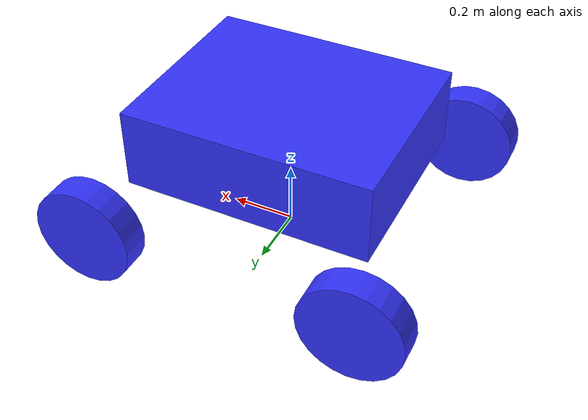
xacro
<?xml version="1.0"?>
<robot xmlns:xacro="http://www.ros.org/wiki/xacro" name="robot">

    <xacro:include filename="inertial_macros.xacro" />

    <material name="white">
        <color rgba="1 1 1 1" />
    </material>

    <material name="orange">
        <color rgba="1 0.3 0.1 1" />
    </material>

    <material name="blue">
        <color rgba="0.2 0.2 1 1" />
    </material>

    <material name="black">
        <color rgba="0 0 0 1" />
    </material>

    <material name="red">
        <color rgba="1 0 0 1"/>
    </material>

    <!-- BASE LINK -->

    <joint name="base_footprint_joint" type="fixed">
        <parent link="base_footprint"/>
        <child link="base_link"/>
        <origin xyz="0 0 0.35571" rpy="0 0 3.14159"/>
    </joint>

    <!-- BASE_FOOTPRINT LINK -->

    <link name="base_footprint">
    </link>

    <!-- Chassis Link -->

    <link name="base_link">
        <visual>
            <origin xyz ="0 0 0"/>
            <geometry>
                <box size="0.77 0.62 0.25" />
            </geometry>
            <material name="blue"/>
        </visual>
        <collision>
            <origin xyz ="0 0 0"/>
            <geometry>
                <box size="0.77 0.62 0.25" />
            </geometry>
        </collision>
        <xacro:inertial_box mass="20" x="0.77" y="0.62" z="0.25">
            <origin xyz="0 0 0" rpy="0 0 0"/>
        </xacro:inertial_box>
    </link>

    <gazebo reference="chassis">
        <material>Gazebo/Blue</material>
    </gazebo>

    <!-- Front Left Wheel Link -->
    <joint name="front_left_wheel_joint" type="continuous">
        <parent link="base_link" />
        <child link="front_left_wheel" />
        <origin xyz ="0.42 0.47 -0.19821" rpy="-${pi/2} 0 0" />
        <axis xyz="0 0 1" />
    </joint>

    <link name="front_left_wheel">
        <visual>
            <geometry>
                <cylinder radius="0.1575" length="0.09" />
            </geometry>
            <material name="blue"/>
        </visual>
        <collision>
            <geometry>
                <cylinder radius="0.1575" length="0.09" />
            </geometry>
        </collision>
        <xacro:inertial_cylinder mass="1.2" length="0.09" radius="0.1575">
            <origin xyz="0 0 0" rpy="0 0 0"/>
        </xacro:inertial_cylinder>
    </link>

    <gazebo reference="front_left_wheel">
        <material>Gazebo/Blue</material>
    </gazebo>

    <!-- Front Right Wheel Link -->
    <joint name="front_right_wheel_joint" type="continuous">
        <parent link="base_link" />
        <child link="front_right_wheel" />
        <origin xyz ="0.42 -0.47 -0.19821" rpy="${pi/2} 0 0" />
        <axis xyz="0 0 -1" />
    </joint>

    <link name="front_right_wheel">
        <visual>

            <geometry>
                <cylinder radius="0.1575" length="0.09" />
            </geometry>
            <material name="blue"/>
        </visual>
        <collision>
            <geometry>
                <cylinder radius="0.1575" length="0.09" />
            </geometry>
        </collision>
        <xacro:inertial_cylinder mass="1.2" length="0.09" radius="0.1575">
            <origin xyz="0 0 0" rpy="0 0 0"/>
        </xacro:inertial_cylinder>
    </link>

    <gazebo reference="front_right_wheel">
        <material>Gazebo/Blue</material>
    </gazebo>

    <!-- Back Left Wheel Link -->
    <joint name="back_left_wheel_joint" type="continuous">
        <parent link="base_link" />
        <child link="back_left_wheel" />
        <origin xyz ="-0.42 0.47 -0.19821" rpy="-${pi/2} 0 0" />
        <axis xyz="0 0 1" />
    </joint>

    <link name="back_left_wheel">
        <visual>
            <geometry>
                <cylinder radius="0.1575" length="0.09" />
            </geometry>
            <material name="blue"/>
        </visual>
        <collision>
            <geometry>
                <cylinder radius="0.1575" length="0.09" />
            </geometry>
        </collision>
        <xacro:inertial_cylinder mass="1.2" length="0.09" radius="0.1575">
            <origin xyz="0 0 0" rpy="0 0 0"/>
        </xacro:inertial_cylinder>
    </link>

    <gazebo reference="back_left_wheel">
        <material>Gazebo/Blue</material>
    </gazebo>

    <!-- Back Right Wheel Link -->
    <joint name="back_right_wheel_joint" type="continuous">
        <parent link="base_link" />
        <child link="back_right_wheel" />
        <origin xyz ="-0.42 -0.47 -0.19821" rpy="${pi/2} 0 0" />
        <axis xyz="0 0 -1" />
    </joint>

    <link name="back_right_wheel">
        <visual>
            <geometry>
                <cylinder radius="0.1575" length="0.09" />
            </geometry>
            <material name="blue"/>
        </visual>
        <collision>
            <geometry>
                <cylinder radius="0.1575" length="0.09" />
            </geometry>
        </collision>
        <xacro:inertial_cylinder mass="1.2" length="0.09" radius="0.1575">
            <origin xyz="0 0 0" rpy="0 0 0"/>
        </xacro:inertial_cylinder>
    </link>

    <gazebo reference="back_right_wheel">
        <material>Gazebo/Blue</material>
    </gazebo>

</robot>
